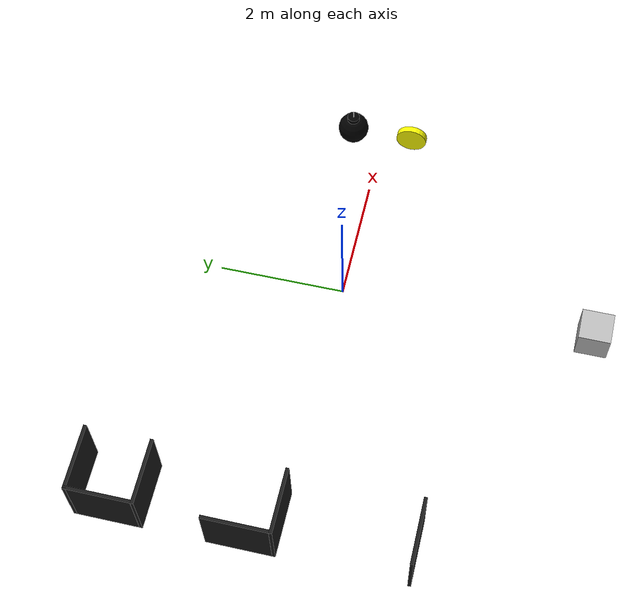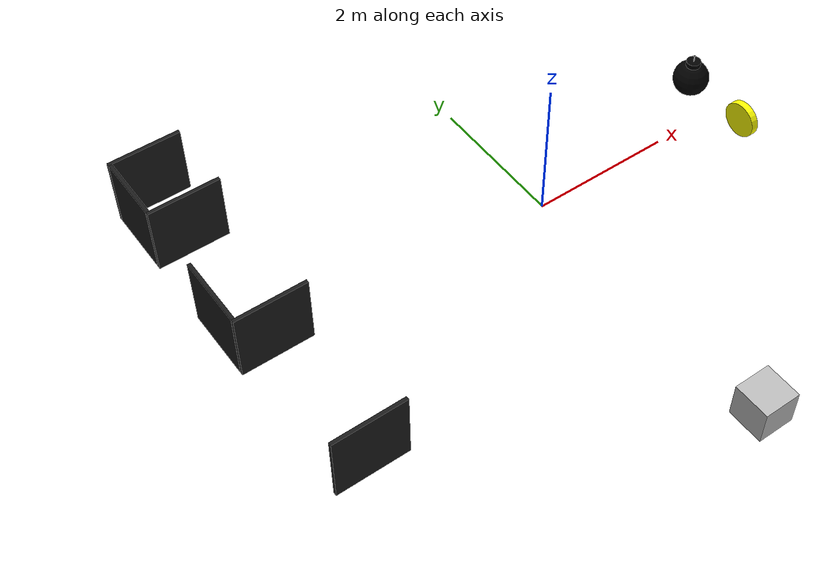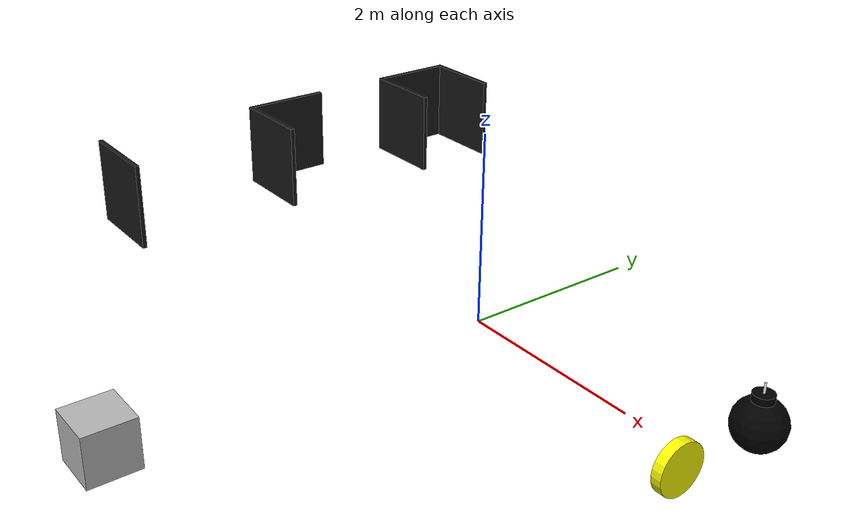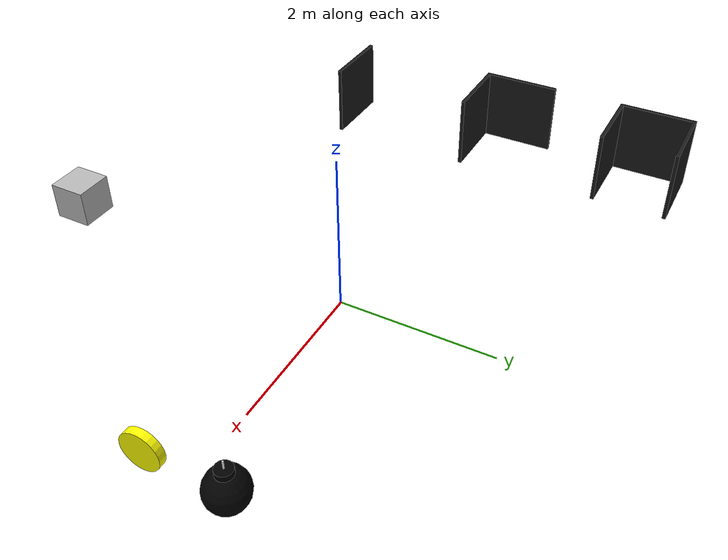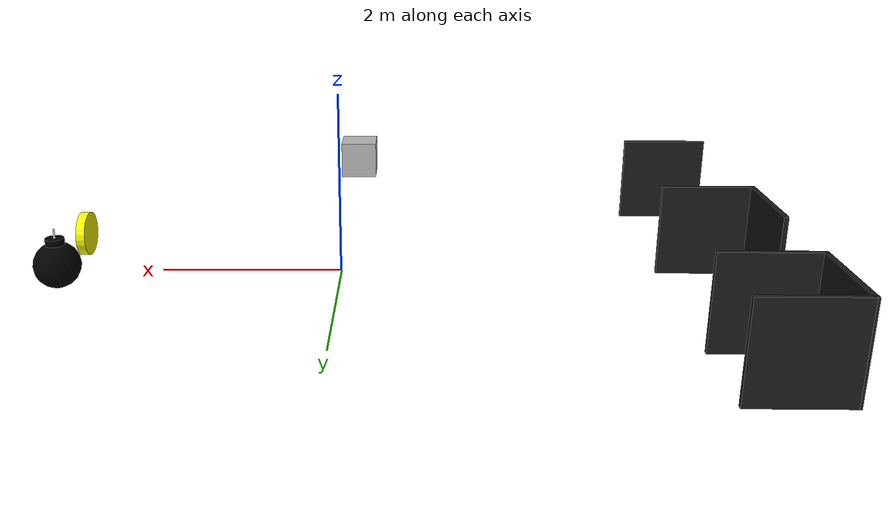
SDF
<sdf version="1.4">
 <world name="default">
  <include><uri>model://sun</uri></include>
  <include><uri>model://barrier_1</uri><pose>-4 -2 0 0 0 0</pose></include>
  <include><uri>model://barrier_2</uri><pose>-4 0 0 0 0 0</pose></include>
  <include><uri>model://barrier_3</uri><pose>-4 2 0 0 0 0</pose></include>
  <include><uri>model://coin</uri><pose>3 -0.5 0 0 0 0</pose></include>
  <include><uri>model://bomb</uri><pose>3 0.5 0 0 0 0</pose></include>
  <include><uri>model://aruco_cube</uri><pose>0 -4 0 0 0 0</pose></include>
 </world>
</sdf>

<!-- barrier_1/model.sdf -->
<sdf version='1.4'>
  <model name="barrier_1">
	<static>true</static>
	<link name='chassis'>
	<pose>0 0 0.5 0 0 0</pose>

	<collision name='collision'>
	  <geometry>
		<box>
		  <size>1 .05 1</size>
		</box>
	  </geometry>
	</collision>

	<visual name='visual'>
	  <geometry>
		<box>
		  <size>1 .05 1</size>
		</box>
	  </geometry>
      <material>
        <ambient>.1 .1 .1 1</ambient>
        <diffuse>.1 .1 .1 1</diffuse>
        <specular>0.1 0.1 0.1 1</specular>
        <emissive>0 0 0 0</emissive>
      </material>
	</visual>
	</link>
	</model>
</sdf>

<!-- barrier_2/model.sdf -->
<sdf version='1.4'>
  <model name="barrier_2">
	<static>true</static>
	<link name='chassis'>
	<pose>0 0 0.5 0 0 0</pose>

	<collision name='collision'>
	  <geometry>
		<box>
		  <size>1 .05 1</size>
		</box>
	  </geometry>
	</collision>

	<visual name='visual'>
	  <geometry>
		<box>
		  <size>1 .05 1</size>
		</box>
	  </geometry>
      <material>
        <ambient>.1 .1 .1 1</ambient>
        <diffuse>.1 .1 .1 1</diffuse>
        <specular>0.1 0.1 0.1 1</specular>
        <emissive>0 0 0 0</emissive>
      </material>
	</visual>

	<collision name='collision2'>
      <pose>-0.475 0.525 0 0 0 1.57</pose>
	  <geometry>
		<box>
		  <size>1 .05 1</size>
		</box>
	  </geometry>
	</collision>

	<visual name='visual2'>
      <pose>-0.475 0.525 0 0 0 1.57</pose>
	  <geometry>
		<box>
		  <size>1 .05 1</size>
		</box>
	  </geometry>
      <material>
        <ambient>.1 .1 .1 1</ambient>
        <diffuse>.1 .1 .1 1</diffuse>
        <specular>0.1 0.1 0.1 1</specular>
        <emissive>0 0 0 0</emissive>
      </material>
	</visual>
	</link>
	</model>
</sdf>

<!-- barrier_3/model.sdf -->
<sdf version='1.4'>
  <model name="barrier_3">
	<static>true</static>
	<link name='chassis'>
	<pose>0 0 0.5 0 0 0</pose>

	<collision name='collision'>
	  <geometry>
		<box>
		  <size>1 .05 1</size>
		</box>
	  </geometry>
	</collision>

	<visual name='visual'>
	  <geometry>
		<box>
		  <size>1 .05 1</size>
		</box>
	  </geometry>
      <material>
        <ambient>.1 .1 .1 1</ambient>
        <diffuse>.1 .1 .1 1</diffuse>
        <specular>0.1 0.1 0.1 1</specular>
        <emissive>0 0 0 0</emissive>
      </material>
	</visual>

	<collision name='collision2'>
      <pose>-0.475 0.525 0 0 0 1.57</pose>
	  <geometry>
		<box>
		  <size>1 .05 1</size>
		</box>
	  </geometry>
	</collision>

	<visual name='visual2'>
      <pose>-0.475 0.525 0 0 0 1.57</pose>
	  <geometry>
		<box>
		  <size>1 .05 1</size>
		</box>
	  </geometry>
      <material>
        <ambient>.1 .1 .1 1</ambient>
        <diffuse>.1 .1 .1 1</diffuse>
        <specular>0.1 0.1 0.1 1</specular>
        <emissive>0 0 0 0</emissive>
      </material>
	</visual>

	<collision name='collision3'>
      <pose>0 1 0 0 0 0</pose>
	  <geometry>
		<box>
		  <size>1 .05 1</size>
		</box>
	  </geometry>
	</collision>

	<visual name='visual3'>
      <pose>0 1 0 0 0 0</pose>
	  <geometry>
		<box>
		  <size>1 .05 1</size>
		</box>
	  </geometry>
      <material>
        <ambient>.1 .1 .1 1</ambient>
        <diffuse>.1 .1 .1 1</diffuse>
        <specular>0.1 0.1 0.1 1</specular>
        <emissive>0 0 0 0</emissive>
      </material>
	</visual>

	</link>
	</model>
</sdf>

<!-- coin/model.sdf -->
<sdf version='1.4'>
  <model name="coin">
	<static>true</static>
	<link name='chassis'>
	<pose>0 0 .25 0 0 0</pose>

	<visual name='visual'>
      <pose>0 0 0 0 1.57 0</pose>
	  <geometry>
		<cylinder>
		  <radius>.25</radius>
		  <length>.1</length>
		</cylinder>
	  </geometry>
      <material>
        <ambient>1 1 0 1</ambient>
        <diffuse>1 1 0 1</diffuse>
        <specular>0.1 0.1 0.1 1</specular>
        <emissive>0 0 0 0</emissive>
      </material>
	</visual>
	</link>
	</model>
</sdf>

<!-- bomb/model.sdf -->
<sdf version='1.4'>
  <model name="bomb">
	<static>true</static>
	<link name='chassis'>
	<pose>0 0 0.25 0 0 0</pose>

	<visual name='visual'>
    <pose>0 0 0.2 0 0 0</pose>
	  <geometry>
		<cylinder>
		  <radius>.1</radius>
		  <length>.2</length>
		</cylinder>
	  </geometry>
      <material>
        <ambient>0 0 0 1</ambient>
        <diffuse>0 0 0 1</diffuse>
        <specular>0.1 0.1 0.1 1</specular>
        <emissive>0 0 0 0</emissive>
      </material>
	</visual>

	<visual name='visual2'>
	  <geometry>
		<sphere>
		  <radius>.25</radius>
		</sphere>
	  </geometry>
      <material>
        <ambient>0 0 0 1</ambient>
        <diffuse>0 0 0 1</diffuse>
        <specular>0.1 0.1 0.1 1</specular>
        <emissive>0 0 0 0</emissive>
      </material>
	</visual>

	<visual name='visual3'>
    <pose>0 0 0.3 0 0 0</pose>
	  <geometry>
		<cylinder>
		  <radius>.01</radius>
		  <length>.2</length>
		</cylinder>
	  </geometry>
      <material>
        <ambient>1 1 1 1</ambient>
        <diffuse>1 1 1 1</diffuse>
        <specular>0.1 0.1 0.1 1</specular>
        <emissive>0 0 0 0</emissive>
      </material>
	</visual>

	</link>
	</model>
</sdf>

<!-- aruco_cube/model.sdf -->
<sdf version='1.4'>
  <model name="aruco_cube">
	<static>true</static>
	<link name='chassis'>
	<pose>0 0 .25 0 0 0</pose>

	<collision name='collision'>
	  <geometry>
		<box>
		  <size>.5 .5 .5</size>
		</box>
	  </geometry>
	</collision>

	<visual name='visual'>
	  <geometry>
		<box>
		  <size>.5 .5 .5</size>
		</box>
	  </geometry>
        <material>
          <script>
            <uri>model://aruco_cube/materials/scripts</uri>
            <uri>model://aruco_cube/materials/textures</uri>
            <name>Aruco/Diffuse</name>
          </script>
        </material>
	</visual>
	</link>
	</model>
</sdf>
